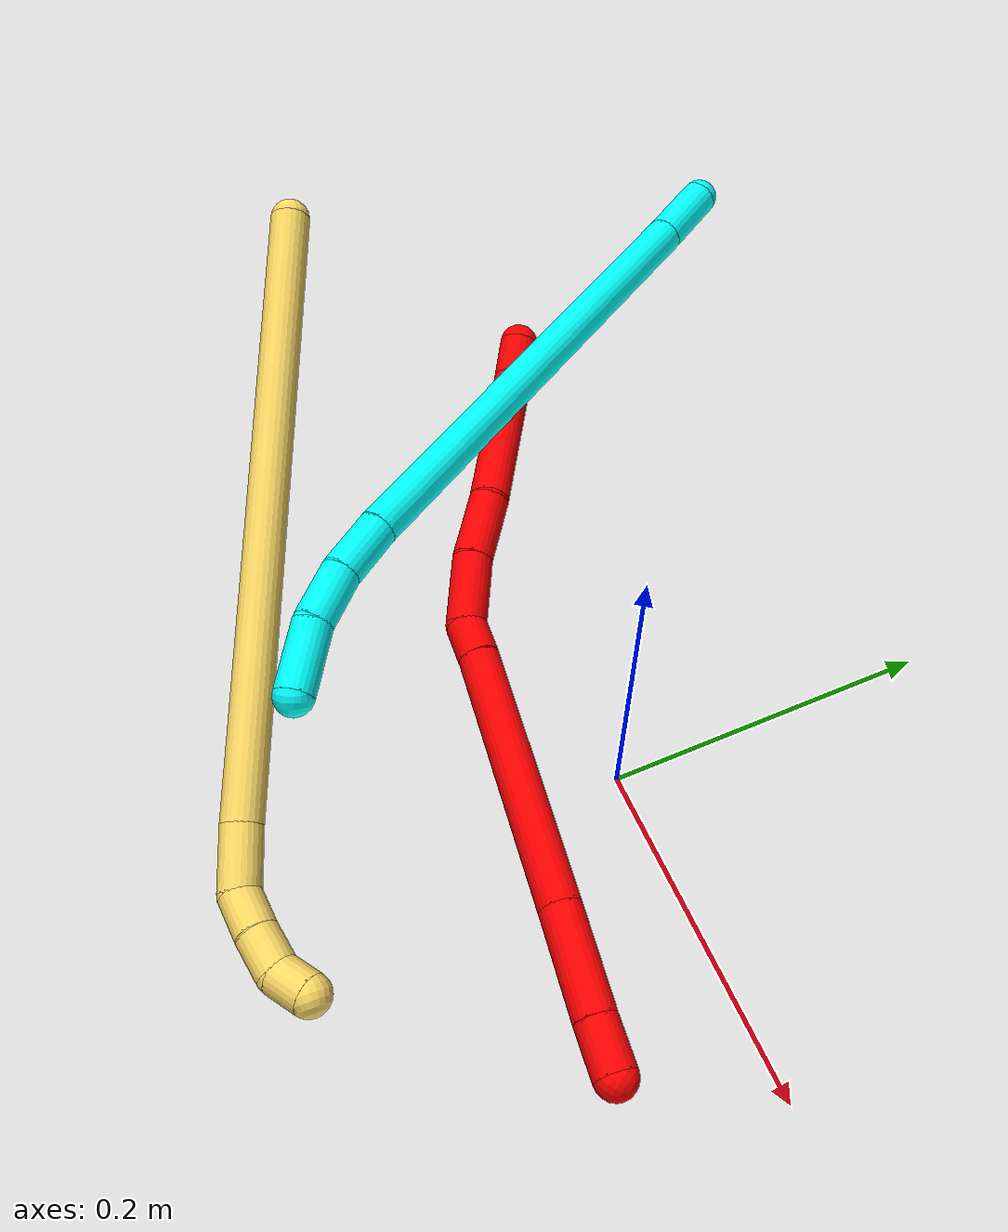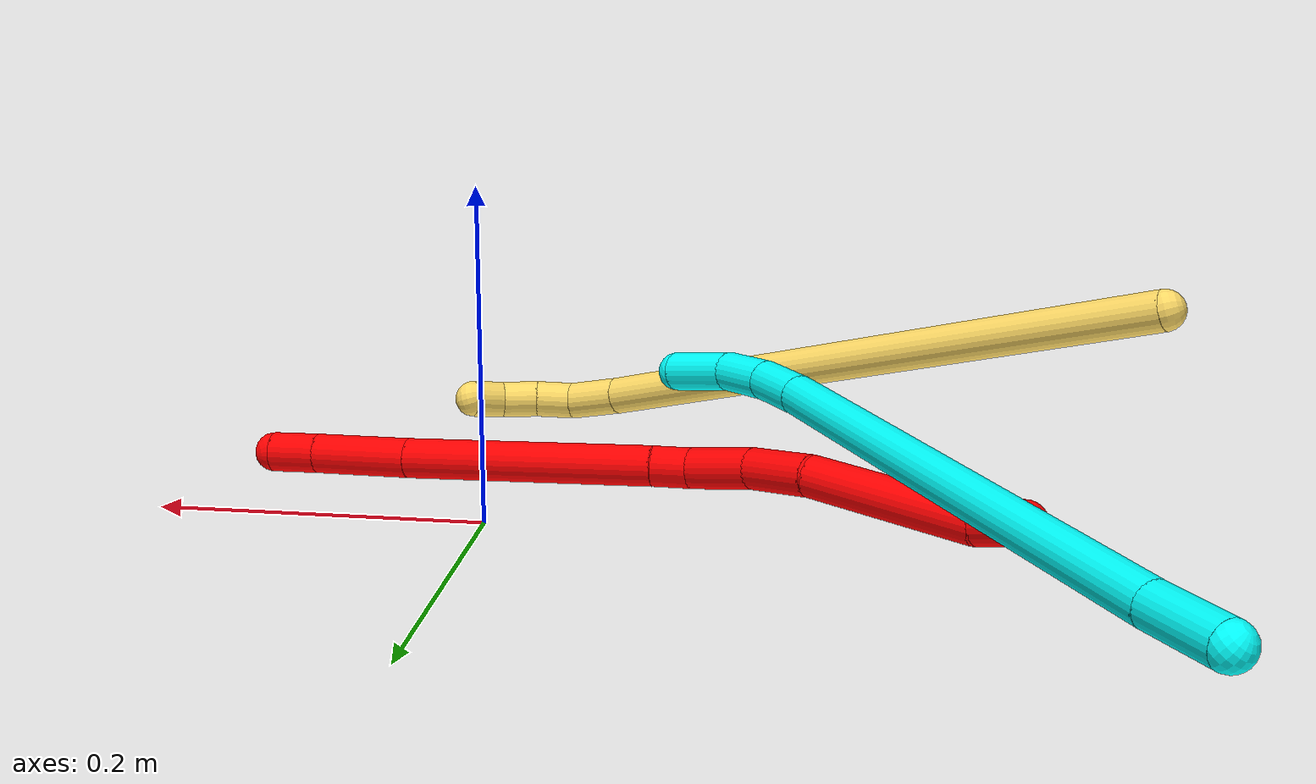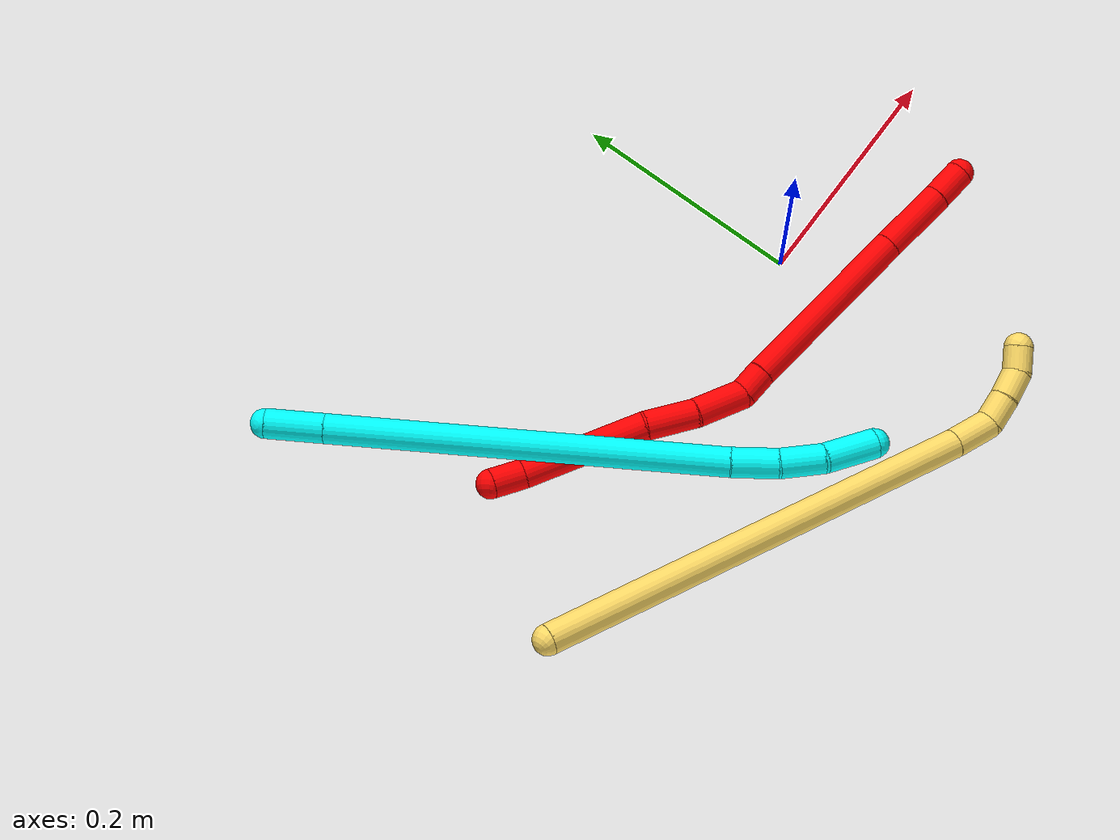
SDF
<sdf version="1.7">
 <world name="default">
  <model name="2">
   <static>0</static>
   <link name="2">
    <collision name="collision-cylinder-e_1_1_4">
     <pose>0.012544 -0.002848 -0.00646 2.72633 1.05814 2.44991</pose>
     <geometry><cylinder><radius>0.0125</radius><length>0.028788</length></cylinder></geometry>
     <surface>
      <friction><ode><mu>1.16</mu><mu2>1.16</mu2><slip1>0</slip1><slip2>0</slip2></ode></friction>
      <contact><ode><kp>1e+06</kp><kd>1</kd><max_vel>0</max_vel><min_depth>0.001</min_depth></ode></contact>
     </surface>
    </collision>
    <visual name="visual-cylinder-e_1_1_4">
     <pose>0.012544 -0.002848 -0.00646 2.72633 1.05814 2.44991</pose>
     <geometry><cylinder><radius>0.0125</radius><length>0.028788</length></cylinder></geometry>
     <material><ambient>1 0 0 1</ambient></material>
    </visual>
    <collision name="collision-cylinder-e_2_4_5">
     <pose>0.072321 -0.000954 -0.037688 -2.95241 1.08042 -2.8278</pose>
     <geometry><cylinder><radius>0.0125</radius><length>0.107088</length></cylinder></geometry>
     <surface>
      <friction><ode><mu>1.16</mu><mu2>1.16</mu2><slip1>0</slip1><slip2>0</slip2></ode></friction>
      <contact><ode><kp>1e+06</kp><kd>1</kd><max_vel>0</max_vel><min_depth>0.001</min_depth></ode></contact>
     </surface>
    </collision>
    <visual name="visual-cylinder-e_2_4_5">
     <pose>0.072321 -0.000954 -0.037688 -2.95241 1.08042 -2.8278</pose>
     <geometry><cylinder><radius>0.0125</radius><length>0.107088</length></cylinder></geometry>
     <material><ambient>1 0 0 1</ambient></material>
    </visual>
    <collision name="collision-cylinder-e_3_5_6">
     <pose>0.139608 0.002159 -0.070816 2.94925 1.16909 2.85205</pose>
     <geometry><cylinder><radius>0.0125</radius><length>0.043573</length></cylinder></geometry>
     <surface>
      <friction><ode><mu>1.16</mu><mu2>1.16</mu2><slip1>0</slip1><slip2>0</slip2></ode></friction>
      <contact><ode><kp>1e+06</kp><kd>1</kd><max_vel>0</max_vel><min_depth>0.001</min_depth></ode></contact>
     </surface>
    </collision>
    <visual name="visual-cylinder-e_3_5_6">
     <pose>0.139608 0.002159 -0.070816 2.94925 1.16909 2.85205</pose>
     <geometry><cylinder><radius>0.0125</radius><length>0.043573</length></cylinder></geometry>
     <material><ambient>1 0 0 1</ambient></material>
    </visual>
    <collision name="collision-cylinder-e_4_6_7">
     <pose>0.178562 -0.002478 -0.090715 2.88648 1.00803 2.68463</pose>
     <geometry><cylinder><radius>0.0125</radius><length>0.044698</length></cylinder></geometry>
     <surface>
      <friction><ode><mu>1.16</mu><mu2>1.16</mu2><slip1>0</slip1><slip2>0</slip2></ode></friction>
      <contact><ode><kp>1e+06</kp><kd>1</kd><max_vel>0</max_vel><min_depth>0.001</min_depth></ode></contact>
     </surface>
    </collision>
    <visual name="visual-cylinder-e_4_6_7">
     <pose>0.178562 -0.002478 -0.090715 2.88648 1.00803 2.68463</pose>
     <geometry><cylinder><radius>0.0125</radius><length>0.044698</length></cylinder></geometry>
     <material><ambient>1 0 0 1</ambient></material>
    </visual>
    <collision name="collision-cylinder-e_5_7_8">
     <pose>0.204306 -0.005085 -0.112141 -3.10095 0.604921 -3.0115</pose>
     <geometry><cylinder><radius>0.0125</radius><length>0.024062</length></cylinder></geometry>
     <surface>
      <friction><ode><mu>1.16</mu><mu2>1.16</mu2><slip1>0</slip1><slip2>0</slip2></ode></friction>
      <contact><ode><kp>1e+06</kp><kd>1</kd><max_vel>0</max_vel><min_depth>0.001</min_depth></ode></contact>
     </surface>
    </collision>
    <visual name="visual-cylinder-e_5_7_8">
     <pose>0.204306 -0.005085 -0.112141 -3.10095 0.604921 -3.0115</pose>
     <geometry><cylinder><radius>0.0125</radius><length>0.024062</length></cylinder></geometry>
     <material><ambient>1 0 0 1</ambient></material>
    </visual>
    <collision name="collision-cylinder-e_6_8_9">
     <pose>0.259719 -0.005137 -0.185174 3.1344 0.655662 3.12046</pose>
     <geometry><cylinder><radius>0.0125</radius><length>0.159332</length></cylinder></geometry>
     <surface>
      <friction><ode><mu>1.16</mu><mu2>1.16</mu2><slip1>0</slip1><slip2>0</slip2></ode></friction>
      <contact><ode><kp>1e+06</kp><kd>1</kd><max_vel>0</max_vel><min_depth>0.001</min_depth></ode></contact>
     </surface>
    </collision>
    <visual name="visual-cylinder-e_6_8_9">
     <pose>0.259719 -0.005137 -0.185174 3.1344 0.655662 3.12046</pose>
     <geometry><cylinder><radius>0.0125</radius><length>0.159332</length></cylinder></geometry>
     <material><ambient>1 0 0 1</ambient></material>
    </visual>
    <collision name="collision-cylinder-e_7_9_10">
     <pose>0.327451 -0.00526 -0.272757 -3.12805 0.664902 -3.10238</pose>
     <geometry><cylinder><radius>0.0125</radius><length>0.062113</length></cylinder></geometry>
     <surface>
      <friction><ode><mu>1.16</mu><mu2>1.16</mu2><slip1>0</slip1><slip2>0</slip2></ode></friction>
      <contact><ode><kp>1e+06</kp><kd>1</kd><max_vel>0</max_vel><min_depth>0.001</min_depth></ode></contact>
     </surface>
    </collision>
    <visual name="visual-cylinder-e_7_9_10">
     <pose>0.327451 -0.00526 -0.272757 -3.12805 0.664902 -3.10238</pose>
     <geometry><cylinder><radius>0.0125</radius><length>0.062113</length></cylinder></geometry>
     <material><ambient>1 0 0 1</ambient></material>
    </visual>
    <collision name="collision-cylinder-e_8_10_2">
     <pose>0.355597 -0.004837 -0.309423 -3.13408 0.633642 -3.11866</pose>
     <geometry><cylinder><radius>0.0125</radius><length>0.030347</length></cylinder></geometry>
     <surface>
      <friction><ode><mu>1.16</mu><mu2>1.16</mu2><slip1>0</slip1><slip2>0</slip2></ode></friction>
      <contact><ode><kp>1e+06</kp><kd>1</kd><max_vel>0</max_vel><min_depth>0.001</min_depth></ode></contact>
     </surface>
    </collision>
    <visual name="visual-cylinder-e_8_10_2">
     <pose>0.355597 -0.004837 -0.309423 -3.13408 0.633642 -3.11866</pose>
     <geometry><cylinder><radius>0.0125</radius><length>0.030347</length></cylinder></geometry>
     <material><ambient>1 0 0 1</ambient></material>
    </visual>
    <collision name="collision-sphere-2">
     <pose>0.36458 -0.004745 -0.321651 0 -0 0</pose>
     <geometry><sphere><radius>0.0125</radius></sphere></geometry>
     <surface>
      <friction><ode><mu>1.16</mu><mu2>1.16</mu2><slip1>0</slip1><slip2>0</slip2></ode></friction>
      <contact><ode><kp>1e+06</kp><kd>1</kd><max_vel>0</max_vel><min_depth>0.001</min_depth></ode></contact>
     </surface>
    </collision>
    <visual name="visual-sphere-2">
     <pose>0.36458 -0.004745 -0.321651 0 -0 0</pose>
     <geometry><sphere><radius>0.0125</radius></sphere></geometry>
     <material><ambient>1 0 0 1</ambient></material>
    </visual>
    <collision name="collision-sphere-10">
     <pose>0.346613 -0.004929 -0.297196 0 -0 0</pose>
     <geometry><sphere><radius>0.0125</radius></sphere></geometry>
     <surface>
      <friction><ode><mu>1.16</mu><mu2>1.16</mu2><slip1>0</slip1><slip2>0</slip2></ode></friction>
      <contact><ode><kp>1e+06</kp><kd>1</kd><max_vel>0</max_vel><min_depth>0.001</min_depth></ode></contact>
     </surface>
    </collision>
    <visual name="visual-sphere-10">
     <pose>0.346613 -0.004929 -0.297196 0 -0 0</pose>
     <geometry><sphere><radius>0.0125</radius></sphere></geometry>
     <material><ambient>1 0 0 1</ambient></material>
    </visual>
    <collision name="collision-sphere-9">
     <pose>0.30829 -0.005591 -0.248319 0 -0 0</pose>
     <geometry><sphere><radius>0.0125</radius></sphere></geometry>
     <surface>
      <friction><ode><mu>1.16</mu><mu2>1.16</mu2><slip1>0</slip1><slip2>0</slip2></ode></friction>
      <contact><ode><kp>1e+06</kp><kd>1</kd><max_vel>0</max_vel><min_depth>0.001</min_depth></ode></contact>
     </surface>
    </collision>
    <visual name="visual-sphere-9">
     <pose>0.30829 -0.005591 -0.248319 0 -0 0</pose>
     <geometry><sphere><radius>0.0125</radius></sphere></geometry>
     <material><ambient>1 0 0 1</ambient></material>
    </visual>
    <collision name="collision-sphere-4">
     <pose>0.025087 -0.005697 -0.01292 0 -0 0</pose>
     <geometry><sphere><radius>0.0125</radius></sphere></geometry>
     <surface>
      <friction><ode><mu>1.16</mu><mu2>1.16</mu2><slip1>0</slip1><slip2>0</slip2></ode></friction>
      <contact><ode><kp>1e+06</kp><kd>1</kd><max_vel>0</max_vel><min_depth>0.001</min_depth></ode></contact>
     </surface>
    </collision>
    <visual name="visual-sphere-4">
     <pose>0.025087 -0.005697 -0.01292 0 -0 0</pose>
     <geometry><sphere><radius>0.0125</radius></sphere></geometry>
     <material><ambient>1 0 0 1</ambient></material>
    </visual>
    <collision name="collision-sphere-1">
     <geometry><sphere><radius>0.0125</radius></sphere></geometry>
     <surface>
      <friction><ode><mu>1.16</mu><mu2>1.16</mu2><slip1>0</slip1><slip2>0</slip2></ode></friction>
      <contact><ode><kp>1e+06</kp><kd>1</kd><max_vel>0</max_vel><min_depth>0.001</min_depth></ode></contact>
     </surface>
    </collision>
    <visual name="visual-sphere-1">
     <geometry><sphere><radius>0.0125</radius></sphere></geometry>
     <material><ambient>1 0 0 1</ambient></material>
    </visual>
    <collision name="collision-sphere-8">
     <pose>0.211148 -0.004683 -0.122029 0 -0 0</pose>
     <geometry><sphere><radius>0.0125</radius></sphere></geometry>
     <surface>
      <friction><ode><mu>1.16</mu><mu2>1.16</mu2><slip1>0</slip1><slip2>0</slip2></ode></friction>
      <contact><ode><kp>1e+06</kp><kd>1</kd><max_vel>0</max_vel><min_depth>0.001</min_depth></ode></contact>
     </surface>
    </collision>
    <visual name="visual-sphere-8">
     <pose>0.211148 -0.004683 -0.122029 0 -0 0</pose>
     <geometry><sphere><radius>0.0125</radius></sphere></geometry>
     <material><ambient>1 0 0 1</ambient></material>
    </visual>
    <collision name="collision-sphere-5">
     <pose>0.119555 0.003788 -0.062455 0 -0 0</pose>
     <geometry><sphere><radius>0.0125</radius></sphere></geometry>
     <surface>
      <friction><ode><mu>1.16</mu><mu2>1.16</mu2><slip1>0</slip1><slip2>0</slip2></ode></friction>
      <contact><ode><kp>1e+06</kp><kd>1</kd><max_vel>0</max_vel><min_depth>0.001</min_depth></ode></contact>
     </surface>
    </collision>
    <visual name="visual-sphere-5">
     <pose>0.119555 0.003788 -0.062455 0 -0 0</pose>
     <geometry><sphere><radius>0.0125</radius></sphere></geometry>
     <material><ambient>1 0 0 1</ambient></material>
    </visual>
    <collision name="collision-sphere-6">
     <pose>0.15966 0.000531 -0.079177 0 -0 0</pose>
     <geometry><sphere><radius>0.0125</radius></sphere></geometry>
     <surface>
      <friction><ode><mu>1.16</mu><mu2>1.16</mu2><slip1>0</slip1><slip2>0</slip2></ode></friction>
      <contact><ode><kp>1e+06</kp><kd>1</kd><max_vel>0</max_vel><min_depth>0.001</min_depth></ode></contact>
     </surface>
    </collision>
    <visual name="visual-sphere-6">
     <pose>0.15966 0.000531 -0.079177 0 -0 0</pose>
     <geometry><sphere><radius>0.0125</radius></sphere></geometry>
     <material><ambient>1 0 0 1</ambient></material>
    </visual>
    <collision name="collision-sphere-7">
     <pose>0.197464 -0.005487 -0.102253 0 -0 0</pose>
     <geometry><sphere><radius>0.0125</radius></sphere></geometry>
     <surface>
      <friction><ode><mu>1.16</mu><mu2>1.16</mu2><slip1>0</slip1><slip2>0</slip2></ode></friction>
      <contact><ode><kp>1e+06</kp><kd>1</kd><max_vel>0</max_vel><min_depth>0.001</min_depth></ode></contact>
     </surface>
    </collision>
    <visual name="visual-sphere-7">
     <pose>0.197464 -0.005487 -0.102253 0 -0 0</pose>
     <geometry><sphere><radius>0.0125</radius></sphere></geometry>
     <material><ambient>1 0 0 1</ambient></material>
    </visual>
    <inertial>
     <pose>0.199196 -0.00323 -0.139793 0 -0 0</pose>
     <mass>0.5</mass>
     <inertia>
      <ixx>-0.000329</ixx>
      <ixy>0</ixy>
      <ixz>0</ixz>
      <iyy>0.000489</iyy>
      <iyz>0</iyz>
      <izz>-0.000369</izz>
     </inertia>
    </inertial>
   </link>
   <pose>-0.306338 0.072873 0.041681 1.5495 0.048228 -1.03977</pose>
  </model>
  <model name="3">
   <static>0</static>
   <link name="3">
    <collision name="collision-cylinder-e_1_1_4">
     <pose>0.000604 -0.020691 -0.012845 2.12636 0.024788 0.044559</pose>
     <geometry><cylinder><radius>0.0125</radius><length>0.048723</length></cylinder></geometry>
     <surface>
      <friction><ode><mu>1.16</mu><mu2>1.16</mu2><slip1>0</slip1><slip2>0</slip2></ode></friction>
      <contact><ode><kp>1e+06</kp><kd>1</kd><max_vel>0</max_vel><min_depth>0.001</min_depth></ode></contact>
     </surface>
    </collision>
    <visual name="visual-cylinder-e_1_1_4">
     <pose>0.000604 -0.020691 -0.012845 2.12636 0.024788 0.044559</pose>
     <geometry><cylinder><radius>0.0125</radius><length>0.048723</length></cylinder></geometry>
     <material><ambient>0.003922 1 0.996078 1</ambient></material>
    </visual>
    <collision name="collision-cylinder-e_2_4_5">
     <pose>0.007344 -0.185318 -0.106884 2.0844 0.037117 0.063539</pose>
     <geometry><cylinder><radius>0.0125</radius><length>0.330743</length></cylinder></geometry>
     <surface>
      <friction><ode><mu>1.16</mu><mu2>1.16</mu2><slip1>0</slip1><slip2>0</slip2></ode></friction>
      <contact><ode><kp>1e+06</kp><kd>1</kd><max_vel>0</max_vel><min_depth>0.001</min_depth></ode></contact>
     </surface>
    </collision>
    <visual name="visual-cylinder-e_2_4_5">
     <pose>0.007344 -0.185318 -0.106884 2.0844 0.037117 0.063539</pose>
     <geometry><cylinder><radius>0.0125</radius><length>0.330743</length></cylinder></geometry>
     <material><ambient>0.003922 1 0.996078 1</ambient></material>
    </visual>
    <collision name="collision-cylinder-e_3_5_6">
     <pose>0.015118 -0.345528 -0.198484 2.13971 0.084521 0.154156</pose>
     <geometry><cylinder><radius>0.0125</radius><length>0.03877</length></cylinder></geometry>
     <surface>
      <friction><ode><mu>1.16</mu><mu2>1.16</mu2><slip1>0</slip1><slip2>0</slip2></ode></friction>
      <contact><ode><kp>1e+06</kp><kd>1</kd><max_vel>0</max_vel><min_depth>0.001</min_depth></ode></contact>
     </surface>
    </collision>
    <visual name="visual-cylinder-e_3_5_6">
     <pose>0.015118 -0.345528 -0.198484 2.13971 0.084521 0.154156</pose>
     <geometry><cylinder><radius>0.0125</radius><length>0.03877</length></cylinder></geometry>
     <material><ambient>0.003922 1 0.996078 1</ambient></material>
    </visual>
    <collision name="collision-cylinder-e_4_6_7">
     <pose>0.020365 -0.375713 -0.220491 2.26586 0.19674 0.415502</pose>
     <geometry><cylinder><radius>0.0125</radius><length>0.036943</length></cylinder></geometry>
     <surface>
      <friction><ode><mu>1.16</mu><mu2>1.16</mu2><slip1>0</slip1><slip2>0</slip2></ode></friction>
      <contact><ode><kp>1e+06</kp><kd>1</kd><max_vel>0</max_vel><min_depth>0.001</min_depth></ode></contact>
     </surface>
    </collision>
    <visual name="visual-cylinder-e_4_6_7">
     <pose>0.020365 -0.375713 -0.220491 2.26586 0.19674 0.415502</pose>
     <geometry><cylinder><radius>0.0125</radius><length>0.036943</length></cylinder></geometry>
     <material><ambient>0.003922 1 0.996078 1</ambient></material>
    </visual>
    <collision name="collision-cylinder-e_5_7_2">
     <pose>0.031055 -0.402812 -0.248773 2.47268 0.321411 0.872924</pose>
     <geometry><cylinder><radius>0.0125</radius><length>0.044821</length></cylinder></geometry>
     <surface>
      <friction><ode><mu>1.16</mu><mu2>1.16</mu2><slip1>0</slip1><slip2>0</slip2></ode></friction>
      <contact><ode><kp>1e+06</kp><kd>1</kd><max_vel>0</max_vel><min_depth>0.001</min_depth></ode></contact>
     </surface>
    </collision>
    <visual name="visual-cylinder-e_5_7_2">
     <pose>0.031055 -0.402812 -0.248773 2.47268 0.321411 0.872924</pose>
     <geometry><cylinder><radius>0.0125</radius><length>0.044821</length></cylinder></geometry>
     <material><ambient>0.003922 1 0.996078 1</ambient></material>
    </visual>
    <collision name="collision-sphere-2">
     <pose>0.038135 -0.415998 -0.265454 0 -0 0</pose>
     <geometry><sphere><radius>0.0125</radius></sphere></geometry>
     <surface>
      <friction><ode><mu>1.16</mu><mu2>1.16</mu2><slip1>0</slip1><slip2>0</slip2></ode></friction>
      <contact><ode><kp>1e+06</kp><kd>1</kd><max_vel>0</max_vel><min_depth>0.001</min_depth></ode></contact>
     </surface>
    </collision>
    <visual name="visual-sphere-2">
     <pose>0.038135 -0.415998 -0.265454 0 -0 0</pose>
     <geometry><sphere><radius>0.0125</radius></sphere></geometry>
     <material><ambient>0.003922 1 0.996078 1</ambient></material>
    </visual>
    <collision name="collision-sphere-7">
     <pose>0.023975 -0.389626 -0.232093 0 -0 0</pose>
     <geometry><sphere><radius>0.0125</radius></sphere></geometry>
     <surface>
      <friction><ode><mu>1.16</mu><mu2>1.16</mu2><slip1>0</slip1><slip2>0</slip2></ode></friction>
      <contact><ode><kp>1e+06</kp><kd>1</kd><max_vel>0</max_vel><min_depth>0.001</min_depth></ode></contact>
     </surface>
    </collision>
    <visual name="visual-sphere-7">
     <pose>0.023975 -0.389626 -0.232093 0 -0 0</pose>
     <geometry><sphere><radius>0.0125</radius></sphere></geometry>
     <material><ambient>0.003922 1 0.996078 1</ambient></material>
    </visual>
    <collision name="collision-sphere-6">
     <pose>0.016754 -0.361801 -0.20889 0 -0 0</pose>
     <geometry><sphere><radius>0.0125</radius></sphere></geometry>
     <surface>
      <friction><ode><mu>1.16</mu><mu2>1.16</mu2><slip1>0</slip1><slip2>0</slip2></ode></friction>
      <contact><ode><kp>1e+06</kp><kd>1</kd><max_vel>0</max_vel><min_depth>0.001</min_depth></ode></contact>
     </surface>
    </collision>
    <visual name="visual-sphere-6">
     <pose>0.016754 -0.361801 -0.20889 0 -0 0</pose>
     <geometry><sphere><radius>0.0125</radius></sphere></geometry>
     <material><ambient>0.003922 1 0.996078 1</ambient></material>
    </visual>
    <collision name="collision-sphere-5">
     <pose>0.013481 -0.329255 -0.188078 0 -0 0</pose>
     <geometry><sphere><radius>0.0125</radius></sphere></geometry>
     <surface>
      <friction><ode><mu>1.16</mu><mu2>1.16</mu2><slip1>0</slip1><slip2>0</slip2></ode></friction>
      <contact><ode><kp>1e+06</kp><kd>1</kd><max_vel>0</max_vel><min_depth>0.001</min_depth></ode></contact>
     </surface>
    </collision>
    <visual name="visual-sphere-5">
     <pose>0.013481 -0.329255 -0.188078 0 -0 0</pose>
     <geometry><sphere><radius>0.0125</radius></sphere></geometry>
     <material><ambient>0.003922 1 0.996078 1</ambient></material>
    </visual>
    <collision name="collision-sphere-1">
     <geometry><sphere><radius>0.0125</radius></sphere></geometry>
     <surface>
      <friction><ode><mu>1.16</mu><mu2>1.16</mu2><slip1>0</slip1><slip2>0</slip2></ode></friction>
      <contact><ode><kp>1e+06</kp><kd>1</kd><max_vel>0</max_vel><min_depth>0.001</min_depth></ode></contact>
     </surface>
    </collision>
    <visual name="visual-sphere-1">
     <geometry><sphere><radius>0.0125</radius></sphere></geometry>
     <material><ambient>0.003922 1 0.996078 1</ambient></material>
    </visual>
    <collision name="collision-sphere-4">
     <pose>0.001208 -0.041382 -0.02569 0 -0 0</pose>
     <geometry><sphere><radius>0.0125</radius></sphere></geometry>
     <surface>
      <friction><ode><mu>1.16</mu><mu2>1.16</mu2><slip1>0</slip1><slip2>0</slip2></ode></friction>
      <contact><ode><kp>1e+06</kp><kd>1</kd><max_vel>0</max_vel><min_depth>0.001</min_depth></ode></contact>
     </surface>
    </collision>
    <visual name="visual-sphere-4">
     <pose>0.001208 -0.041382 -0.02569 0 -0 0</pose>
     <geometry><sphere><radius>0.0125</radius></sphere></geometry>
     <material><ambient>0.003922 1 0.996078 1</ambient></material>
    </visual>
    <inertial>
     <pose>0.010378 -0.215263 -0.125936 0 -0 0</pose>
     <mass>0.5</mass>
     <inertia>
      <ixx>0.003254</ixx>
      <ixy>0</ixy>
      <ixz>0</ixz>
      <iyy>-0.001324</iyy>
      <iyz>0</iyz>
      <izz>0.002522</izz>
     </inertia>
    </inertial>
   </link>
   <pose>-0.377111 0.248401 0.054455 -0.53008 -0.441548 0.517663</pose>
  </model>
  <model name="5">
   <static>0</static>
   <link name="5">
    <collision name="collision-cylinder-e_1_1_4">
     <pose>0.022837 -0.064173 0.1824 0.3383 0.117563 0.0201</pose>
     <geometry><cylinder><radius>0.0125</radius><length>0.389408</length></cylinder></geometry>
     <surface>
      <friction><ode><mu>1.16</mu><mu2>1.16</mu2><slip1>0</slip1><slip2>0</slip2></ode></friction>
      <contact><ode><kp>1e+06</kp><kd>1</kd><max_vel>0</max_vel><min_depth>0.001</min_depth></ode></contact>
     </surface>
    </collision>
    <visual name="visual-cylinder-e_1_1_4">
     <pose>0.022837 -0.064173 0.1824 0.3383 0.117563 0.0201</pose>
     <geometry><cylinder><radius>0.0125</radius><length>0.389408</length></cylinder></geometry>
     <material><ambient>1 0.858824 0.4 1</ambient></material>
    </visual>
    <collision name="collision-cylinder-e_2_4_5">
     <pose>0.046687 -0.134109 0.38289 0.30841 0.053281 0.008284</pose>
     <geometry><cylinder><radius>0.0125</radius><length>0.038025</length></cylinder></geometry>
     <surface>
      <friction><ode><mu>1.16</mu><mu2>1.16</mu2><slip1>0</slip1><slip2>0</slip2></ode></friction>
      <contact><ode><kp>1e+06</kp><kd>1</kd><max_vel>0</max_vel><min_depth>0.001</min_depth></ode></contact>
     </surface>
    </collision>
    <visual name="visual-cylinder-e_2_4_5">
     <pose>0.046687 -0.134109 0.38289 0.30841 0.053281 0.008284</pose>
     <geometry><cylinder><radius>0.0125</radius><length>0.038025</length></cylinder></geometry>
     <material><ambient>1 0.858824 0.4 1</ambient></material>
    </visual>
    <collision name="collision-cylinder-e_3_5_6">
     <pose>0.043092 -0.139918 0.412896 0.003855 -0.368922 -0.000719</pose>
     <geometry><cylinder><radius>0.0125</radius><length>0.025552</length></cylinder></geometry>
     <surface>
      <friction><ode><mu>1.16</mu><mu2>1.16</mu2><slip1>0</slip1><slip2>0</slip2></ode></friction>
      <contact><ode><kp>1e+06</kp><kd>1</kd><max_vel>0</max_vel><min_depth>0.001</min_depth></ode></contact>
     </surface>
    </collision>
    <visual name="visual-cylinder-e_3_5_6">
     <pose>0.043092 -0.139918 0.412896 0.003855 -0.368922 -0.000719</pose>
     <geometry><cylinder><radius>0.0125</radius><length>0.025552</length></cylinder></geometry>
     <material><ambient>1 0.858824 0.4 1</ambient></material>
    </visual>
    <collision name="collision-cylinder-e_4_6_7">
     <pose>0.034249 -0.138844 0.436567 -0.095005 -0.34448 0.016539</pose>
     <geometry><cylinder><radius>0.0125</radius><length>0.02509</length></cylinder></geometry>
     <surface>
      <friction><ode><mu>1.16</mu><mu2>1.16</mu2><slip1>0</slip1><slip2>0</slip2></ode></friction>
      <contact><ode><kp>1e+06</kp><kd>1</kd><max_vel>0</max_vel><min_depth>0.001</min_depth></ode></contact>
     </surface>
    </collision>
    <visual name="visual-cylinder-e_4_6_7">
     <pose>0.034249 -0.138844 0.436567 -0.095005 -0.34448 0.016539</pose>
     <geometry><cylinder><radius>0.0125</radius><length>0.02509</length></cylinder></geometry>
     <material><ambient>1 0.858824 0.4 1</ambient></material>
    </visual>
    <collision name="collision-cylinder-e_5_7_2">
     <pose>0.023787 -0.133454 0.456272 -0.492772 -0.603856 0.156338</pose>
     <geometry><cylinder><radius>0.0125</radius><length>0.021926</length></cylinder></geometry>
     <surface>
      <friction><ode><mu>1.16</mu><mu2>1.16</mu2><slip1>0</slip1><slip2>0</slip2></ode></friction>
      <contact><ode><kp>1e+06</kp><kd>1</kd><max_vel>0</max_vel><min_depth>0.001</min_depth></ode></contact>
     </surface>
    </collision>
    <visual name="visual-cylinder-e_5_7_2">
     <pose>0.023787 -0.133454 0.456272 -0.492772 -0.603856 0.156338</pose>
     <geometry><cylinder><radius>0.0125</radius><length>0.021926</length></cylinder></geometry>
     <material><ambient>1 0.858824 0.4 1</ambient></material>
    </visual>
    <collision name="collision-sphere-2">
     <pose>0.017562 -0.129185 0.464223 0 -0 0</pose>
     <geometry><sphere><radius>0.0125</radius></sphere></geometry>
     <surface>
      <friction><ode><mu>1.16</mu><mu2>1.16</mu2><slip1>0</slip1><slip2>0</slip2></ode></friction>
      <contact><ode><kp>1e+06</kp><kd>1</kd><max_vel>0</max_vel><min_depth>0.001</min_depth></ode></contact>
     </surface>
    </collision>
    <visual name="visual-sphere-2">
     <pose>0.017562 -0.129185 0.464223 0 -0 0</pose>
     <geometry><sphere><radius>0.0125</radius></sphere></geometry>
     <material><ambient>1 0.858824 0.4 1</ambient></material>
    </visual>
    <collision name="collision-sphere-7">
     <pose>0.030012 -0.137724 0.448322 0 -0 0</pose>
     <geometry><sphere><radius>0.0125</radius></sphere></geometry>
     <surface>
      <friction><ode><mu>1.16</mu><mu2>1.16</mu2><slip1>0</slip1><slip2>0</slip2></ode></friction>
      <contact><ode><kp>1e+06</kp><kd>1</kd><max_vel>0</max_vel><min_depth>0.001</min_depth></ode></contact>
     </surface>
    </collision>
    <visual name="visual-sphere-7">
     <pose>0.030012 -0.137724 0.448322 0 -0 0</pose>
     <geometry><sphere><radius>0.0125</radius></sphere></geometry>
     <material><ambient>1 0.858824 0.4 1</ambient></material>
    </visual>
    <collision name="collision-sphere-6">
     <pose>0.038485 -0.139964 0.424813 0 -0 0</pose>
     <geometry><sphere><radius>0.0125</radius></sphere></geometry>
     <surface>
      <friction><ode><mu>1.16</mu><mu2>1.16</mu2><slip1>0</slip1><slip2>0</slip2></ode></friction>
      <contact><ode><kp>1e+06</kp><kd>1</kd><max_vel>0</max_vel><min_depth>0.001</min_depth></ode></contact>
     </surface>
    </collision>
    <visual name="visual-sphere-6">
     <pose>0.038485 -0.139964 0.424813 0 -0 0</pose>
     <geometry><sphere><radius>0.0125</radius></sphere></geometry>
     <material><ambient>1 0.858824 0.4 1</ambient></material>
    </visual>
    <collision name="collision-sphere-5">
     <pose>0.0477 -0.139872 0.40098 0 -0 0</pose>
     <geometry><sphere><radius>0.0125</radius></sphere></geometry>
     <surface>
      <friction><ode><mu>1.16</mu><mu2>1.16</mu2><slip1>0</slip1><slip2>0</slip2></ode></friction>
      <contact><ode><kp>1e+06</kp><kd>1</kd><max_vel>0</max_vel><min_depth>0.001</min_depth></ode></contact>
     </surface>
    </collision>
    <visual name="visual-sphere-5">
     <pose>0.0477 -0.139872 0.40098 0 -0 0</pose>
     <geometry><sphere><radius>0.0125</radius></sphere></geometry>
     <material><ambient>1 0.858824 0.4 1</ambient></material>
    </visual>
    <collision name="collision-sphere-1">
     <geometry><sphere><radius>0.0125</radius></sphere></geometry>
     <surface>
      <friction><ode><mu>1.16</mu><mu2>1.16</mu2><slip1>0</slip1><slip2>0</slip2></ode></friction>
      <contact><ode><kp>1e+06</kp><kd>1</kd><max_vel>0</max_vel><min_depth>0.001</min_depth></ode></contact>
     </surface>
    </collision>
    <visual name="visual-sphere-1">
     <geometry><sphere><radius>0.0125</radius></sphere></geometry>
     <material><ambient>1 0.858824 0.4 1</ambient></material>
    </visual>
    <collision name="collision-sphere-4">
     <pose>0.045675 -0.128346 0.364801 0 -0 0</pose>
     <geometry><sphere><radius>0.0125</radius></sphere></geometry>
     <surface>
      <friction><ode><mu>1.16</mu><mu2>1.16</mu2><slip1>0</slip1><slip2>0</slip2></ode></friction>
      <contact><ode><kp>1e+06</kp><kd>1</kd><max_vel>0</max_vel><min_depth>0.001</min_depth></ode></contact>
     </surface>
    </collision>
    <visual name="visual-sphere-4">
     <pose>0.045675 -0.128346 0.364801 0 -0 0</pose>
     <geometry><sphere><radius>0.0125</radius></sphere></geometry>
     <material><ambient>1 0.858824 0.4 1</ambient></material>
    </visual>
    <inertial>
     <pose>0.0263 -0.080148 0.23419 0 -0 0</pose>
     <mass>0.5</mass>
     <inertia>
      <ixx>0.005013</ixx>
      <ixy>0</ixy>
      <ixz>0</ixz>
      <iyy>0.00476</iyy>
      <iyz>0</iyz>
      <izz>0.001087</izz>
     </inertia>
    </inertial>
   </link>
   <pose>-0.388502 -0.05323 0.129093 -2.29541 1.08759 -2.29473</pose>
  </model>
 </world>
</sdf>
